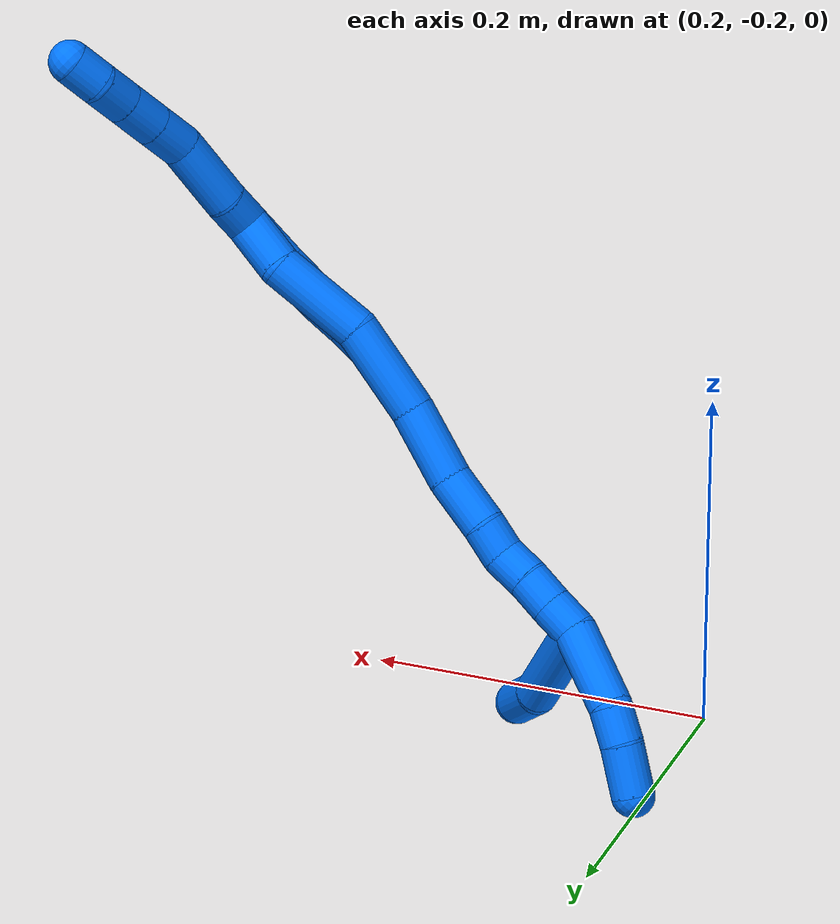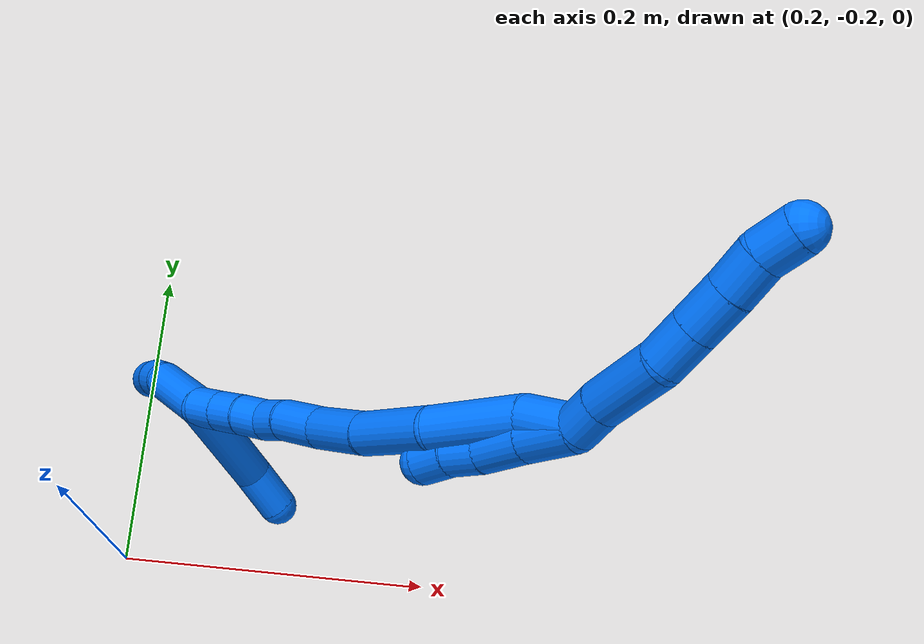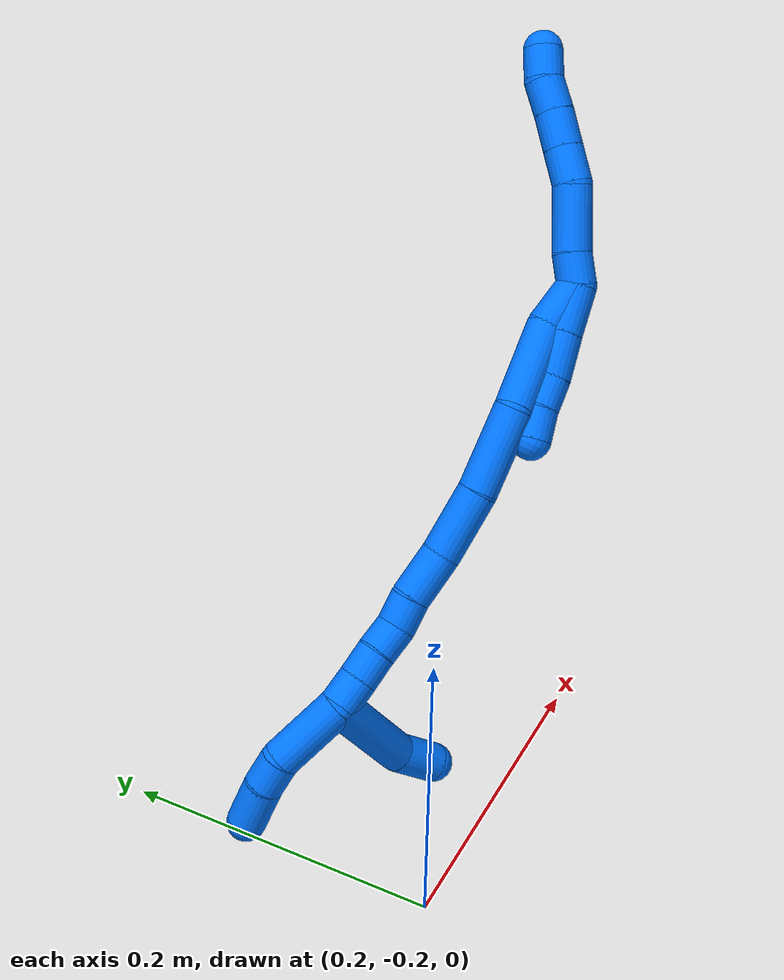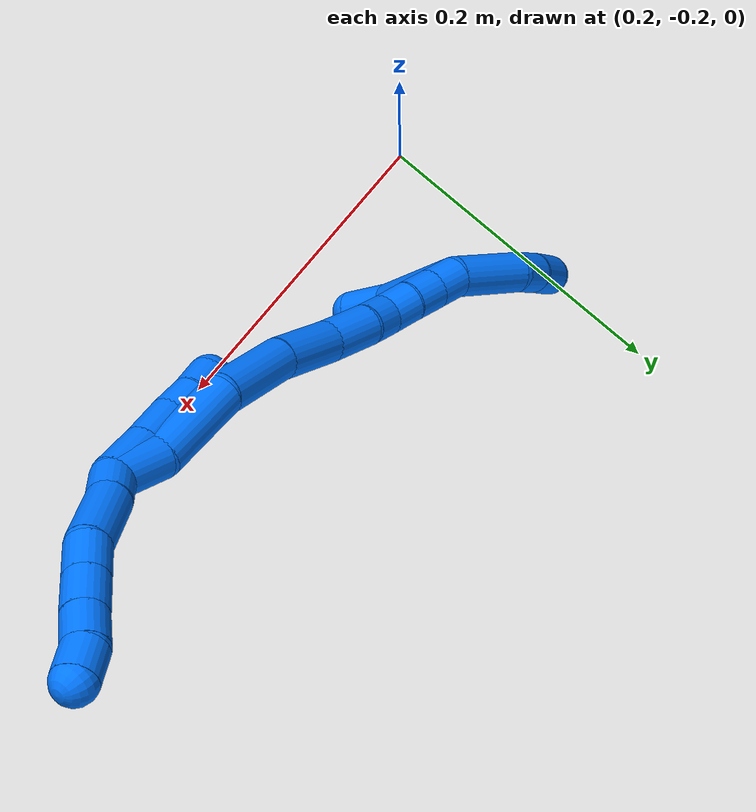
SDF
<sdf version="1.7">
 <world name="default">
  <model name="14">
   <static>0</static>
   <link name="14">
    <collision name="collision-cylinder-e_1_2_8">
     <pose>0.0015 0.005628 0.008534 -0.583025 0.145679 -0.043783</pose>
     <geometry><cylinder><radius>0.0125</radius><length>0.020665</length></cylinder></geometry>
     <surface>
      <friction><ode><mu>1.16</mu><mu2>1.16</mu2><slip1>0</slip1><slip2>0</slip2></ode></friction>
      <contact><ode><kp>1e+06</kp><kd>1</kd><max_vel>0</max_vel><min_depth>0.001</min_depth></ode></contact>
     </surface>
    </collision>
    <visual name="visual-cylinder-e_1_2_8">
     <pose>0.0015 0.005628 0.008534 -0.583025 0.145679 -0.043783</pose>
     <geometry><cylinder><radius>0.0125</radius><length>0.020665</length></cylinder></geometry>
     <material><ambient>0 0.462745 1 1</ambient></material>
    </visual>
    <collision name="collision-cylinder-e_2_8_9">
     <pose>0.004142 0.020443 0.035613 -0.459921 0.055157 -0.012916</pose>
     <geometry><cylinder><radius>0.0125</radius><length>0.041454</length></cylinder></geometry>
     <surface>
      <friction><ode><mu>1.16</mu><mu2>1.16</mu2><slip1>0</slip1><slip2>0</slip2></ode></friction>
      <contact><ode><kp>1e+06</kp><kd>1</kd><max_vel>0</max_vel><min_depth>0.001</min_depth></ode></contact>
     </surface>
    </collision>
    <visual name="visual-cylinder-e_2_8_9">
     <pose>0.004142 0.020443 0.035613 -0.459921 0.055157 -0.012916</pose>
     <geometry><cylinder><radius>0.0125</radius><length>0.041454</length></cylinder></geometry>
     <material><ambient>0 0.462745 1 1</ambient></material>
    </visual>
    <collision name="collision-cylinder-e_3_9_10">
     <pose>0.008818 0.035842 0.063255 -0.599218 0.310344 -0.09657</pose>
     <geometry><cylinder><radius>0.0125</radius><length>0.023137</length></cylinder></geometry>
     <surface>
      <friction><ode><mu>1.16</mu><mu2>1.16</mu2><slip1>0</slip1><slip2>0</slip2></ode></friction>
      <contact><ode><kp>1e+06</kp><kd>1</kd><max_vel>0</max_vel><min_depth>0.001</min_depth></ode></contact>
     </surface>
    </collision>
    <visual name="visual-cylinder-e_3_9_10">
     <pose>0.008818 0.035842 0.063255 -0.599218 0.310344 -0.09657</pose>
     <geometry><cylinder><radius>0.0125</radius><length>0.023137</length></cylinder></geometry>
     <material><ambient>0 0.462745 1 1</ambient></material>
    </visual>
    <collision name="collision-cylinder-e_4_10_11">
     <pose>0.015925 0.048354 0.081593 -0.598302 0.309322 -0.096091</pose>
     <geometry><cylinder><radius>0.0125</radius><length>0.023484</length></cylinder></geometry>
     <surface>
      <friction><ode><mu>1.16</mu><mu2>1.16</mu2><slip1>0</slip1><slip2>0</slip2></ode></friction>
      <contact><ode><kp>1e+06</kp><kd>1</kd><max_vel>0</max_vel><min_depth>0.001</min_depth></ode></contact>
     </surface>
    </collision>
    <visual name="visual-cylinder-e_4_10_11">
     <pose>0.015925 0.048354 0.081593 -0.598302 0.309322 -0.096091</pose>
     <geometry><cylinder><radius>0.0125</radius><length>0.023484</length></cylinder></geometry>
     <material><ambient>0 0.462745 1 1</ambient></material>
    </visual>
    <collision name="collision-cylinder-e_5_11_12">
     <pose>0.022822 0.060781 0.098824 -0.654248 0.318782 -0.108985</pose>
     <geometry><cylinder><radius>0.0125</radius><length>0.021204</length></cylinder></geometry>
     <surface>
      <friction><ode><mu>1.16</mu><mu2>1.16</mu2><slip1>0</slip1><slip2>0</slip2></ode></friction>
      <contact><ode><kp>1e+06</kp><kd>1</kd><max_vel>0</max_vel><min_depth>0.001</min_depth></ode></contact>
     </surface>
    </collision>
    <visual name="visual-cylinder-e_5_11_12">
     <pose>0.022822 0.060781 0.098824 -0.654248 0.318782 -0.108985</pose>
     <geometry><cylinder><radius>0.0125</radius><length>0.021204</length></cylinder></geometry>
     <material><ambient>0 0.462745 1 1</ambient></material>
    </visual>
    <collision name="collision-cylinder-e_6_12_6">
     <pose>0.028717 0.07045 0.115835 -0.374102 0.259366 -0.049356</pose>
     <geometry><cylinder><radius>0.0125</radius><length>0.020057</length></cylinder></geometry>
     <surface>
      <friction><ode><mu>1.16</mu><mu2>1.16</mu2><slip1>0</slip1><slip2>0</slip2></ode></friction>
      <contact><ode><kp>1e+06</kp><kd>1</kd><max_vel>0</max_vel><min_depth>0.001</min_depth></ode></contact>
     </surface>
    </collision>
    <visual name="visual-cylinder-e_6_12_6">
     <pose>0.028717 0.07045 0.115835 -0.374102 0.259366 -0.049356</pose>
     <geometry><cylinder><radius>0.0125</radius><length>0.020057</length></cylinder></geometry>
     <material><ambient>0 0.462745 1 1</ambient></material>
    </visual>
    <collision name="collision-cylinder-e_1_2_13">
     <pose>-0.000223 -0.002235 -0.01525 2.99605 -0.014495 -0.198178</pose>
     <geometry><cylinder><radius>0.0125</radius><length>0.030828</length></cylinder></geometry>
     <surface>
      <friction><ode><mu>1.16</mu><mu2>1.16</mu2><slip1>0</slip1><slip2>0</slip2></ode></friction>
      <contact><ode><kp>1e+06</kp><kd>1</kd><max_vel>0</max_vel><min_depth>0.001</min_depth></ode></contact>
     </surface>
    </collision>
    <visual name="visual-cylinder-e_1_2_13">
     <pose>-0.000223 -0.002235 -0.01525 2.99605 -0.014495 -0.198178</pose>
     <geometry><cylinder><radius>0.0125</radius><length>0.030828</length></cylinder></geometry>
     <material><ambient>0 0.462745 1 1</ambient></material>
    </visual>
    <collision name="collision-cylinder-e_2_13_14">
     <pose>-0.001143 -0.006805 -0.044526 2.97671 -0.048888 -0.575356</pose>
     <geometry><cylinder><radius>0.0125</radius><length>0.028474</length></cylinder></geometry>
     <surface>
      <friction><ode><mu>1.16</mu><mu2>1.16</mu2><slip1>0</slip1><slip2>0</slip2></ode></friction>
      <contact><ode><kp>1e+06</kp><kd>1</kd><max_vel>0</max_vel><min_depth>0.001</min_depth></ode></contact>
     </surface>
    </collision>
    <visual name="visual-cylinder-e_2_13_14">
     <pose>-0.001143 -0.006805 -0.044526 2.97671 -0.048888 -0.575356</pose>
     <geometry><cylinder><radius>0.0125</radius><length>0.028474</length></cylinder></geometry>
     <material><ambient>0 0.462745 1 1</ambient></material>
    </visual>
    <collision name="collision-cylinder-e_3_14_15">
     <pose>-0.002652 -0.009244 -0.068764 3.13132 -0.079478 -2.88476</pose>
     <geometry><cylinder><radius>0.0125</radius><length>0.020486</length></cylinder></geometry>
     <surface>
      <friction><ode><mu>1.16</mu><mu2>1.16</mu2><slip1>0</slip1><slip2>0</slip2></ode></friction>
      <contact><ode><kp>1e+06</kp><kd>1</kd><max_vel>0</max_vel><min_depth>0.001</min_depth></ode></contact>
     </surface>
    </collision>
    <visual name="visual-cylinder-e_3_14_15">
     <pose>-0.002652 -0.009244 -0.068764 3.13132 -0.079478 -2.88476</pose>
     <geometry><cylinder><radius>0.0125</radius><length>0.020486</length></cylinder></geometry>
     <material><ambient>0 0.462745 1 1</ambient></material>
    </visual>
    <collision name="collision-cylinder-e_4_15_5">
     <pose>-0.004181 -0.011249 -0.088873 2.95187 -0.070977 -0.714269</pose>
     <geometry><cylinder><radius>0.0125</radius><length>0.020212</length></cylinder></geometry>
     <surface>
      <friction><ode><mu>1.16</mu><mu2>1.16</mu2><slip1>0</slip1><slip2>0</slip2></ode></friction>
      <contact><ode><kp>1e+06</kp><kd>1</kd><max_vel>0</max_vel><min_depth>0.001</min_depth></ode></contact>
     </surface>
    </collision>
    <visual name="visual-cylinder-e_4_15_5">
     <pose>-0.004181 -0.011249 -0.088873 2.95187 -0.070977 -0.714269</pose>
     <geometry><cylinder><radius>0.0125</radius><length>0.020212</length></cylinder></geometry>
     <material><ambient>0 0.462745 1 1</ambient></material>
    </visual>
    <collision name="collision-cylinder-e_1_2_16">
     <pose>0.002493 0.002373 -0.015303 -2.98775 0.159587 -1.60757</pose>
     <geometry><cylinder><radius>0.0125</radius><length>0.031371</length></cylinder></geometry>
     <surface>
      <friction><ode><mu>1.16</mu><mu2>1.16</mu2><slip1>0</slip1><slip2>0</slip2></ode></friction>
      <contact><ode><kp>1e+06</kp><kd>1</kd><max_vel>0</max_vel><min_depth>0.001</min_depth></ode></contact>
     </surface>
    </collision>
    <visual name="visual-cylinder-e_1_2_16">
     <pose>0.002493 0.002373 -0.015303 -2.98775 0.159587 -1.60757</pose>
     <geometry><cylinder><radius>0.0125</radius><length>0.031371</length></cylinder></geometry>
     <material><ambient>0 0.462745 1 1</ambient></material>
    </visual>
    <collision name="collision-cylinder-e_2_16_17">
     <pose>0.001724 0.004977 -0.058541 -3.13335 -0.116232 3.00018</pose>
     <geometry><cylinder><radius>0.0125</radius><length>0.05625</length></cylinder></geometry>
     <surface>
      <friction><ode><mu>1.16</mu><mu2>1.16</mu2><slip1>0</slip1><slip2>0</slip2></ode></friction>
      <contact><ode><kp>1e+06</kp><kd>1</kd><max_vel>0</max_vel><min_depth>0.001</min_depth></ode></contact>
     </surface>
    </collision>
    <visual name="visual-cylinder-e_2_16_17">
     <pose>0.001724 0.004977 -0.058541 -3.13335 -0.116232 3.00018</pose>
     <geometry><cylinder><radius>0.0125</radius><length>0.05625</length></cylinder></geometry>
     <material><ambient>0 0.462745 1 1</ambient></material>
    </visual>
    <collision name="collision-cylinder-e_3_17_18">
     <pose>0.002353 0.002377 -0.113543 3.03742 0.142005 1.87646</pose>
     <geometry><cylinder><radius>0.0125</radius><length>0.054983</length></cylinder></geometry>
     <surface>
      <friction><ode><mu>1.16</mu><mu2>1.16</mu2><slip1>0</slip1><slip2>0</slip2></ode></friction>
      <contact><ode><kp>1e+06</kp><kd>1</kd><max_vel>0</max_vel><min_depth>0.001</min_depth></ode></contact>
     </surface>
    </collision>
    <visual name="visual-cylinder-e_3_17_18">
     <pose>0.002353 0.002377 -0.113543 3.03742 0.142005 1.87646</pose>
     <geometry><cylinder><radius>0.0125</radius><length>0.054983</length></cylinder></geometry>
     <material><ambient>0 0.462745 1 1</ambient></material>
    </visual>
    <collision name="collision-cylinder-e_4_18_19">
     <pose>0.012183 -0.001428 -0.162184 3.09643 0.268393 2.81008</pose>
     <geometry><cylinder><radius>0.0125</radius><length>0.044796</length></cylinder></geometry>
     <surface>
      <friction><ode><mu>1.16</mu><mu2>1.16</mu2><slip1>0</slip1><slip2>0</slip2></ode></friction>
      <contact><ode><kp>1e+06</kp><kd>1</kd><max_vel>0</max_vel><min_depth>0.001</min_depth></ode></contact>
     </surface>
    </collision>
    <visual name="visual-cylinder-e_4_18_19">
     <pose>0.012183 -0.001428 -0.162184 3.09643 0.268393 2.81008</pose>
     <geometry><cylinder><radius>0.0125</radius><length>0.044796</length></cylinder></geometry>
     <material><ambient>0 0.462745 1 1</ambient></material>
    </visual>
    <collision name="collision-cylinder-e_5_19_20">
     <pose>0.020925 -0.000638 -0.199632 -3.03083 0.173677 -2.00754</pose>
     <geometry><cylinder><radius>0.0125</radius><length>0.03243</length></cylinder></geometry>
     <surface>
      <friction><ode><mu>1.16</mu><mu2>1.16</mu2><slip1>0</slip1><slip2>0</slip2></ode></friction>
      <contact><ode><kp>1e+06</kp><kd>1</kd><max_vel>0</max_vel><min_depth>0.001</min_depth></ode></contact>
     </surface>
    </collision>
    <visual name="visual-cylinder-e_5_19_20">
     <pose>0.020925 -0.000638 -0.199632 -3.03083 0.173677 -2.00754</pose>
     <geometry><cylinder><radius>0.0125</radius><length>0.03243</length></cylinder></geometry>
     <material><ambient>0 0.462745 1 1</ambient></material>
    </visual>
    <collision name="collision-cylinder-e_6_20_21">
     <pose>0.025593 0.00043 -0.225375 3.07106 0.186382 2.41966</pose>
     <geometry><cylinder><radius>0.0125</radius><length>0.020138</length></cylinder></geometry>
     <surface>
      <friction><ode><mu>1.16</mu><mu2>1.16</mu2><slip1>0</slip1><slip2>0</slip2></ode></friction>
      <contact><ode><kp>1e+06</kp><kd>1</kd><max_vel>0</max_vel><min_depth>0.001</min_depth></ode></contact>
     </surface>
    </collision>
    <visual name="visual-cylinder-e_6_20_21">
     <pose>0.025593 0.00043 -0.225375 3.07106 0.186382 2.41966</pose>
     <geometry><cylinder><radius>0.0125</radius><length>0.020138</length></cylinder></geometry>
     <material><ambient>0 0.462745 1 1</ambient></material>
    </visual>
    <collision name="collision-cylinder-e_7_21_22">
     <pose>0.027765 0.002084 -0.244971 -2.90438 0.030595 -0.255363</pose>
     <geometry><cylinder><radius>0.0125</radius><length>0.020021</length></cylinder></geometry>
     <surface>
      <friction><ode><mu>1.16</mu><mu2>1.16</mu2><slip1>0</slip1><slip2>0</slip2></ode></friction>
      <contact><ode><kp>1e+06</kp><kd>1</kd><max_vel>0</max_vel><min_depth>0.001</min_depth></ode></contact>
     </surface>
    </collision>
    <visual name="visual-cylinder-e_7_21_22">
     <pose>0.027765 0.002084 -0.244971 -2.90438 0.030595 -0.255363</pose>
     <geometry><cylinder><radius>0.0125</radius><length>0.020021</length></cylinder></geometry>
     <material><ambient>0 0.462745 1 1</ambient></material>
    </visual>
    <collision name="collision-cylinder-e_8_22_23">
     <pose>0.029034 0.005813 -0.264554 -3.00271 0.096504 -1.21375</pose>
     <geometry><cylinder><radius>0.0125</radius><length>0.020001</length></cylinder></geometry>
     <surface>
      <friction><ode><mu>1.16</mu><mu2>1.16</mu2><slip1>0</slip1><slip2>0</slip2></ode></friction>
      <contact><ode><kp>1e+06</kp><kd>1</kd><max_vel>0</max_vel><min_depth>0.001</min_depth></ode></contact>
     </surface>
    </collision>
    <visual name="visual-cylinder-e_8_22_23">
     <pose>0.029034 0.005813 -0.264554 -3.00271 0.096504 -1.21375</pose>
     <geometry><cylinder><radius>0.0125</radius><length>0.020001</length></cylinder></geometry>
     <material><ambient>0 0.462745 1 1</ambient></material>
    </visual>
    <collision name="collision-cylinder-e_9_23_1">
     <pose>0.03071 0.009013 -0.284224 -2.95803 0.071217 -0.738581</pose>
     <geometry><cylinder><radius>0.0125</radius><length>0.02001</length></cylinder></geometry>
     <surface>
      <friction><ode><mu>1.16</mu><mu2>1.16</mu2><slip1>0</slip1><slip2>0</slip2></ode></friction>
      <contact><ode><kp>1e+06</kp><kd>1</kd><max_vel>0</max_vel><min_depth>0.001</min_depth></ode></contact>
     </surface>
    </collision>
    <visual name="visual-cylinder-e_9_23_1">
     <pose>0.03071 0.009013 -0.284224 -2.95803 0.071217 -0.738581</pose>
     <geometry><cylinder><radius>0.0125</radius><length>0.02001</length></cylinder></geometry>
     <material><ambient>0 0.462745 1 1</ambient></material>
    </visual>
    <collision name="collision-cylinder-e_1_1_24">
     <pose>0.04259 -0.02198 -0.298918 1.71849 0.324729 0.375485</pose>
     <geometry><cylinder><radius>0.0125</radius><length>0.07001</length></cylinder></geometry>
     <surface>
      <friction><ode><mu>1.16</mu><mu2>1.16</mu2><slip1>0</slip1><slip2>0</slip2></ode></friction>
      <contact><ode><kp>1e+06</kp><kd>1</kd><max_vel>0</max_vel><min_depth>0.001</min_depth></ode></contact>
     </surface>
    </collision>
    <visual name="visual-cylinder-e_1_1_24">
     <pose>0.04259 -0.02198 -0.298918 1.71849 0.324729 0.375485</pose>
     <geometry><cylinder><radius>0.0125</radius><length>0.07001</length></cylinder></geometry>
     <material><ambient>0 0.462745 1 1</ambient></material>
    </visual>
    <collision name="collision-cylinder-e_2_24_4">
     <pose>0.055582 -0.069546 -0.30182 1.4374 0.121909 0.106674</pose>
     <geometry><cylinder><radius>0.0125</radius><length>0.02999</length></cylinder></geometry>
     <surface>
      <friction><ode><mu>1.16</mu><mu2>1.16</mu2><slip1>0</slip1><slip2>0</slip2></ode></friction>
      <contact><ode><kp>1e+06</kp><kd>1</kd><max_vel>0</max_vel><min_depth>0.001</min_depth></ode></contact>
     </surface>
    </collision>
    <visual name="visual-cylinder-e_2_24_4">
     <pose>0.055582 -0.069546 -0.30182 1.4374 0.121909 0.106674</pose>
     <geometry><cylinder><radius>0.0125</radius><length>0.02999</length></cylinder></geometry>
     <material><ambient>0 0.462745 1 1</ambient></material>
    </visual>
    <collision name="collision-cylinder-e_1_1_25">
     <pose>0.040911 0.016152 -0.316013 -2.90419 0.397334 -2.07198</pose>
     <geometry><cylinder><radius>0.0125</radius><length>0.049043</length></cylinder></geometry>
     <surface>
      <friction><ode><mu>1.16</mu><mu2>1.16</mu2><slip1>0</slip1><slip2>0</slip2></ode></friction>
      <contact><ode><kp>1e+06</kp><kd>1</kd><max_vel>0</max_vel><min_depth>0.001</min_depth></ode></contact>
     </surface>
    </collision>
    <visual name="visual-cylinder-e_1_1_25">
     <pose>0.040911 0.016152 -0.316013 -2.90419 0.397334 -2.07198</pose>
     <geometry><cylinder><radius>0.0125</radius><length>0.049043</length></cylinder></geometry>
     <material><ambient>0 0.462745 1 1</ambient></material>
    </visual>
    <collision name="collision-cylinder-e_2_25_26">
     <pose>0.055188 0.020303 -0.347491 3.01936 0.46387 2.63458</pose>
     <geometry><cylinder><radius>0.0125</radius><length>0.021408</length></cylinder></geometry>
     <surface>
      <friction><ode><mu>1.16</mu><mu2>1.16</mu2><slip1>0</slip1><slip2>0</slip2></ode></friction>
      <contact><ode><kp>1e+06</kp><kd>1</kd><max_vel>0</max_vel><min_depth>0.001</min_depth></ode></contact>
     </surface>
    </collision>
    <visual name="visual-cylinder-e_2_25_26">
     <pose>0.055188 0.020303 -0.347491 3.01936 0.46387 2.63458</pose>
     <geometry><cylinder><radius>0.0125</radius><length>0.021408</length></cylinder></geometry>
     <material><ambient>0 0.462745 1 1</ambient></material>
    </visual>
    <collision name="collision-cylinder-e_3_26_3">
     <pose>0.066948 0.015474 -0.369494 2.8567 0.491345 2.10247</pose>
     <geometry><cylinder><radius>0.0125</radius><length>0.029549</length></cylinder></geometry>
     <surface>
      <friction><ode><mu>1.16</mu><mu2>1.16</mu2><slip1>0</slip1><slip2>0</slip2></ode></friction>
      <contact><ode><kp>1e+06</kp><kd>1</kd><max_vel>0</max_vel><min_depth>0.001</min_depth></ode></contact>
     </surface>
    </collision>
    <visual name="visual-cylinder-e_3_26_3">
     <pose>0.066948 0.015474 -0.369494 2.8567 0.491345 2.10247</pose>
     <geometry><cylinder><radius>0.0125</radius><length>0.029549</length></cylinder></geometry>
     <material><ambient>0 0.462745 1 1</ambient></material>
    </visual>
    <collision name="collision-sphere-3">
     <pose>0.073919 0.011813 -0.381996 0 -0 0</pose>
     <geometry><sphere><radius>0.0125</radius></sphere></geometry>
     <surface>
      <friction><ode><mu>1.16</mu><mu2>1.16</mu2><slip1>0</slip1><slip2>0</slip2></ode></friction>
      <contact><ode><kp>1e+06</kp><kd>1</kd><max_vel>0</max_vel><min_depth>0.001</min_depth></ode></contact>
     </surface>
    </collision>
    <visual name="visual-sphere-3">
     <pose>0.073919 0.011813 -0.381996 0 -0 0</pose>
     <geometry><sphere><radius>0.0125</radius></sphere></geometry>
     <material><ambient>0 0.462745 1 1</ambient></material>
    </visual>
    <collision name="collision-sphere-26">
     <pose>0.059978 0.019135 -0.356992 0 -0 0</pose>
     <geometry><sphere><radius>0.0125</radius></sphere></geometry>
     <surface>
      <friction><ode><mu>1.16</mu><mu2>1.16</mu2><slip1>0</slip1><slip2>0</slip2></ode></friction>
      <contact><ode><kp>1e+06</kp><kd>1</kd><max_vel>0</max_vel><min_depth>0.001</min_depth></ode></contact>
     </surface>
    </collision>
    <visual name="visual-sphere-26">
     <pose>0.059978 0.019135 -0.356992 0 -0 0</pose>
     <geometry><sphere><radius>0.0125</radius></sphere></geometry>
     <material><ambient>0 0.462745 1 1</ambient></material>
    </visual>
    <collision name="collision-sphere-25">
     <pose>0.050399 0.02147 -0.337989 0 -0 0</pose>
     <geometry><sphere><radius>0.0125</radius></sphere></geometry>
     <surface>
      <friction><ode><mu>1.16</mu><mu2>1.16</mu2><slip1>0</slip1><slip2>0</slip2></ode></friction>
      <contact><ode><kp>1e+06</kp><kd>1</kd><max_vel>0</max_vel><min_depth>0.001</min_depth></ode></contact>
     </surface>
    </collision>
    <visual name="visual-sphere-25">
     <pose>0.050399 0.02147 -0.337989 0 -0 0</pose>
     <geometry><sphere><radius>0.0125</radius></sphere></geometry>
     <material><ambient>0 0.462745 1 1</ambient></material>
    </visual>
    <collision name="collision-sphere-4">
     <pose>0.057406 -0.084297 -0.29984 0 -0 0</pose>
     <geometry><sphere><radius>0.0125</radius></sphere></geometry>
     <surface>
      <friction><ode><mu>1.16</mu><mu2>1.16</mu2><slip1>0</slip1><slip2>0</slip2></ode></friction>
      <contact><ode><kp>1e+06</kp><kd>1</kd><max_vel>0</max_vel><min_depth>0.001</min_depth></ode></contact>
     </surface>
    </collision>
    <visual name="visual-sphere-4">
     <pose>0.057406 -0.084297 -0.29984 0 -0 0</pose>
     <geometry><sphere><radius>0.0125</radius></sphere></geometry>
     <material><ambient>0 0.462745 1 1</ambient></material>
    </visual>
    <collision name="collision-sphere-24">
     <pose>0.053759 -0.054794 -0.303799 0 -0 0</pose>
     <geometry><sphere><radius>0.0125</radius></sphere></geometry>
     <surface>
      <friction><ode><mu>1.16</mu><mu2>1.16</mu2><slip1>0</slip1><slip2>0</slip2></ode></friction>
      <contact><ode><kp>1e+06</kp><kd>1</kd><max_vel>0</max_vel><min_depth>0.001</min_depth></ode></contact>
     </surface>
    </collision>
    <visual name="visual-sphere-24">
     <pose>0.053759 -0.054794 -0.303799 0 -0 0</pose>
     <geometry><sphere><radius>0.0125</radius></sphere></geometry>
     <material><ambient>0 0.462745 1 1</ambient></material>
    </visual>
    <collision name="collision-sphere-1">
     <pose>0.031422 0.010834 -0.294036 0 -0 0</pose>
     <geometry><sphere><radius>0.0125</radius></sphere></geometry>
     <surface>
      <friction><ode><mu>1.16</mu><mu2>1.16</mu2><slip1>0</slip1><slip2>0</slip2></ode></friction>
      <contact><ode><kp>1e+06</kp><kd>1</kd><max_vel>0</max_vel><min_depth>0.001</min_depth></ode></contact>
     </surface>
    </collision>
    <visual name="visual-sphere-1">
     <pose>0.031422 0.010834 -0.294036 0 -0 0</pose>
     <geometry><sphere><radius>0.0125</radius></sphere></geometry>
     <material><ambient>0 0.462745 1 1</ambient></material>
    </visual>
    <collision name="collision-sphere-23">
     <pose>0.029998 0.007191 -0.274412 0 -0 0</pose>
     <geometry><sphere><radius>0.0125</radius></sphere></geometry>
     <surface>
      <friction><ode><mu>1.16</mu><mu2>1.16</mu2><slip1>0</slip1><slip2>0</slip2></ode></friction>
      <contact><ode><kp>1e+06</kp><kd>1</kd><max_vel>0</max_vel><min_depth>0.001</min_depth></ode></contact>
     </surface>
    </collision>
    <visual name="visual-sphere-23">
     <pose>0.029998 0.007191 -0.274412 0 -0 0</pose>
     <geometry><sphere><radius>0.0125</radius></sphere></geometry>
     <material><ambient>0 0.462745 1 1</ambient></material>
    </visual>
    <collision name="collision-sphere-22">
     <pose>0.028071 0.004435 -0.254696 0 -0 0</pose>
     <geometry><sphere><radius>0.0125</radius></sphere></geometry>
     <surface>
      <friction><ode><mu>1.16</mu><mu2>1.16</mu2><slip1>0</slip1><slip2>0</slip2></ode></friction>
      <contact><ode><kp>1e+06</kp><kd>1</kd><max_vel>0</max_vel><min_depth>0.001</min_depth></ode></contact>
     </surface>
    </collision>
    <visual name="visual-sphere-22">
     <pose>0.028071 0.004435 -0.254696 0 -0 0</pose>
     <geometry><sphere><radius>0.0125</radius></sphere></geometry>
     <material><ambient>0 0.462745 1 1</ambient></material>
    </visual>
    <collision name="collision-sphere-21">
     <pose>0.027458 -0.000267 -0.235245 0 -0 0</pose>
     <geometry><sphere><radius>0.0125</radius></sphere></geometry>
     <surface>
      <friction><ode><mu>1.16</mu><mu2>1.16</mu2><slip1>0</slip1><slip2>0</slip2></ode></friction>
      <contact><ode><kp>1e+06</kp><kd>1</kd><max_vel>0</max_vel><min_depth>0.001</min_depth></ode></contact>
     </surface>
    </collision>
    <visual name="visual-sphere-21">
     <pose>0.027458 -0.000267 -0.235245 0 -0 0</pose>
     <geometry><sphere><radius>0.0125</radius></sphere></geometry>
     <material><ambient>0 0.462745 1 1</ambient></material>
    </visual>
    <collision name="collision-sphere-12">
     <pose>0.026145 0.066908 0.106813 0 -0 0</pose>
     <geometry><sphere><radius>0.0125</radius></sphere></geometry>
     <surface>
      <friction><ode><mu>1.16</mu><mu2>1.16</mu2><slip1>0</slip1><slip2>0</slip2></ode></friction>
      <contact><ode><kp>1e+06</kp><kd>1</kd><max_vel>0</max_vel><min_depth>0.001</min_depth></ode></contact>
     </surface>
    </collision>
    <visual name="visual-sphere-12">
     <pose>0.026145 0.066908 0.106813 0 -0 0</pose>
     <geometry><sphere><radius>0.0125</radius></sphere></geometry>
     <material><ambient>0 0.462745 1 1</ambient></material>
    </visual>
    <collision name="collision-sphere-11">
     <pose>0.0195 0.054654 0.090835 0 -0 0</pose>
     <geometry><sphere><radius>0.0125</radius></sphere></geometry>
     <surface>
      <friction><ode><mu>1.16</mu><mu2>1.16</mu2><slip1>0</slip1><slip2>0</slip2></ode></friction>
      <contact><ode><kp>1e+06</kp><kd>1</kd><max_vel>0</max_vel><min_depth>0.001</min_depth></ode></contact>
     </surface>
    </collision>
    <visual name="visual-sphere-11">
     <pose>0.0195 0.054654 0.090835 0 -0 0</pose>
     <geometry><sphere><radius>0.0125</radius></sphere></geometry>
     <material><ambient>0 0.462745 1 1</ambient></material>
    </visual>
    <collision name="collision-sphere-10">
     <pose>0.012351 0.042055 0.072351 0 -0 0</pose>
     <geometry><sphere><radius>0.0125</radius></sphere></geometry>
     <surface>
      <friction><ode><mu>1.16</mu><mu2>1.16</mu2><slip1>0</slip1><slip2>0</slip2></ode></friction>
      <contact><ode><kp>1e+06</kp><kd>1</kd><max_vel>0</max_vel><min_depth>0.001</min_depth></ode></contact>
     </surface>
    </collision>
    <visual name="visual-sphere-10">
     <pose>0.012351 0.042055 0.072351 0 -0 0</pose>
     <geometry><sphere><radius>0.0125</radius></sphere></geometry>
     <material><ambient>0 0.462745 1 1</ambient></material>
    </visual>
    <collision name="collision-sphere-9">
     <pose>0.005285 0.029629 0.054158 0 -0 0</pose>
     <geometry><sphere><radius>0.0125</radius></sphere></geometry>
     <surface>
      <friction><ode><mu>1.16</mu><mu2>1.16</mu2><slip1>0</slip1><slip2>0</slip2></ode></friction>
      <contact><ode><kp>1e+06</kp><kd>1</kd><max_vel>0</max_vel><min_depth>0.001</min_depth></ode></contact>
     </surface>
    </collision>
    <visual name="visual-sphere-9">
     <pose>0.005285 0.029629 0.054158 0 -0 0</pose>
     <geometry><sphere><radius>0.0125</radius></sphere></geometry>
     <material><ambient>0 0.462745 1 1</ambient></material>
    </visual>
    <collision name="collision-sphere-2">
     <geometry><sphere><radius>0.0125</radius></sphere></geometry>
     <surface>
      <friction><ode><mu>1.16</mu><mu2>1.16</mu2><slip1>0</slip1><slip2>0</slip2></ode></friction>
      <contact><ode><kp>1e+06</kp><kd>1</kd><max_vel>0</max_vel><min_depth>0.001</min_depth></ode></contact>
     </surface>
    </collision>
    <visual name="visual-sphere-2">
     <geometry><sphere><radius>0.0125</radius></sphere></geometry>
     <material><ambient>0 0.462745 1 1</ambient></material>
    </visual>
    <collision name="collision-sphere-19">
     <pose>0.018123 -0.002403 -0.183758 0 -0 0</pose>
     <geometry><sphere><radius>0.0125</radius></sphere></geometry>
     <surface>
      <friction><ode><mu>1.16</mu><mu2>1.16</mu2><slip1>0</slip1><slip2>0</slip2></ode></friction>
      <contact><ode><kp>1e+06</kp><kd>1</kd><max_vel>0</max_vel><min_depth>0.001</min_depth></ode></contact>
     </surface>
    </collision>
    <visual name="visual-sphere-19">
     <pose>0.018123 -0.002403 -0.183758 0 -0 0</pose>
     <geometry><sphere><radius>0.0125</radius></sphere></geometry>
     <material><ambient>0 0.462745 1 1</ambient></material>
    </visual>
    <collision name="collision-sphere-8">
     <pose>0.003 0.011256 0.017068 0 -0 0</pose>
     <geometry><sphere><radius>0.0125</radius></sphere></geometry>
     <surface>
      <friction><ode><mu>1.16</mu><mu2>1.16</mu2><slip1>0</slip1><slip2>0</slip2></ode></friction>
      <contact><ode><kp>1e+06</kp><kd>1</kd><max_vel>0</max_vel><min_depth>0.001</min_depth></ode></contact>
     </surface>
    </collision>
    <visual name="visual-sphere-8">
     <pose>0.003 0.011256 0.017068 0 -0 0</pose>
     <geometry><sphere><radius>0.0125</radius></sphere></geometry>
     <material><ambient>0 0.462745 1 1</ambient></material>
    </visual>
    <collision name="collision-sphere-6">
     <pose>0.031289 0.073992 0.124858 0 -0 0</pose>
     <geometry><sphere><radius>0.0125</radius></sphere></geometry>
     <surface>
      <friction><ode><mu>1.16</mu><mu2>1.16</mu2><slip1>0</slip1><slip2>0</slip2></ode></friction>
      <contact><ode><kp>1e+06</kp><kd>1</kd><max_vel>0</max_vel><min_depth>0.001</min_depth></ode></contact>
     </surface>
    </collision>
    <visual name="visual-sphere-6">
     <pose>0.031289 0.073992 0.124858 0 -0 0</pose>
     <geometry><sphere><radius>0.0125</radius></sphere></geometry>
     <material><ambient>0 0.462745 1 1</ambient></material>
    </visual>
    <collision name="collision-sphere-13">
     <pose>-0.000447 -0.004471 -0.030499 0 -0 0</pose>
     <geometry><sphere><radius>0.0125</radius></sphere></geometry>
     <surface>
      <friction><ode><mu>1.16</mu><mu2>1.16</mu2><slip1>0</slip1><slip2>0</slip2></ode></friction>
      <contact><ode><kp>1e+06</kp><kd>1</kd><max_vel>0</max_vel><min_depth>0.001</min_depth></ode></contact>
     </surface>
    </collision>
    <visual name="visual-sphere-13">
     <pose>-0.000447 -0.004471 -0.030499 0 -0 0</pose>
     <geometry><sphere><radius>0.0125</radius></sphere></geometry>
     <material><ambient>0 0.462745 1 1</ambient></material>
    </visual>
    <collision name="collision-sphere-14">
     <pose>-0.001838 -0.009139 -0.058553 0 -0 0</pose>
     <geometry><sphere><radius>0.0125</radius></sphere></geometry>
     <surface>
      <friction><ode><mu>1.16</mu><mu2>1.16</mu2><slip1>0</slip1><slip2>0</slip2></ode></friction>
      <contact><ode><kp>1e+06</kp><kd>1</kd><max_vel>0</max_vel><min_depth>0.001</min_depth></ode></contact>
     </surface>
    </collision>
    <visual name="visual-sphere-14">
     <pose>-0.001838 -0.009139 -0.058553 0 -0 0</pose>
     <geometry><sphere><radius>0.0125</radius></sphere></geometry>
     <material><ambient>0 0.462745 1 1</ambient></material>
    </visual>
    <collision name="collision-sphere-15">
     <pose>-0.003465 -0.009348 -0.078974 0 -0 0</pose>
     <geometry><sphere><radius>0.0125</radius></sphere></geometry>
     <surface>
      <friction><ode><mu>1.16</mu><mu2>1.16</mu2><slip1>0</slip1><slip2>0</slip2></ode></friction>
      <contact><ode><kp>1e+06</kp><kd>1</kd><max_vel>0</max_vel><min_depth>0.001</min_depth></ode></contact>
     </surface>
    </collision>
    <visual name="visual-sphere-15">
     <pose>-0.003465 -0.009348 -0.078974 0 -0 0</pose>
     <geometry><sphere><radius>0.0125</radius></sphere></geometry>
     <material><ambient>0 0.462745 1 1</ambient></material>
    </visual>
    <collision name="collision-sphere-5">
     <pose>-0.004898 -0.013151 -0.098773 0 -0 0</pose>
     <geometry><sphere><radius>0.0125</radius></sphere></geometry>
     <surface>
      <friction><ode><mu>1.16</mu><mu2>1.16</mu2><slip1>0</slip1><slip2>0</slip2></ode></friction>
      <contact><ode><kp>1e+06</kp><kd>1</kd><max_vel>0</max_vel><min_depth>0.001</min_depth></ode></contact>
     </surface>
    </collision>
    <visual name="visual-sphere-5">
     <pose>-0.004898 -0.013151 -0.098773 0 -0 0</pose>
     <geometry><sphere><radius>0.0125</radius></sphere></geometry>
     <material><ambient>0 0.462745 1 1</ambient></material>
    </visual>
    <collision name="collision-sphere-16">
     <pose>0.004985 0.004746 -0.030607 0 -0 0</pose>
     <geometry><sphere><radius>0.0125</radius></sphere></geometry>
     <surface>
      <friction><ode><mu>1.16</mu><mu2>1.16</mu2><slip1>0</slip1><slip2>0</slip2></ode></friction>
      <contact><ode><kp>1e+06</kp><kd>1</kd><max_vel>0</max_vel><min_depth>0.001</min_depth></ode></contact>
     </surface>
    </collision>
    <visual name="visual-sphere-16">
     <pose>0.004985 0.004746 -0.030607 0 -0 0</pose>
     <geometry><sphere><radius>0.0125</radius></sphere></geometry>
     <material><ambient>0 0.462745 1 1</ambient></material>
    </visual>
    <collision name="collision-sphere-17">
     <pose>-0.001538 0.005207 -0.086476 0 -0 0</pose>
     <geometry><sphere><radius>0.0125</radius></sphere></geometry>
     <surface>
      <friction><ode><mu>1.16</mu><mu2>1.16</mu2><slip1>0</slip1><slip2>0</slip2></ode></friction>
      <contact><ode><kp>1e+06</kp><kd>1</kd><max_vel>0</max_vel><min_depth>0.001</min_depth></ode></contact>
     </surface>
    </collision>
    <visual name="visual-sphere-17">
     <pose>-0.001538 0.005207 -0.086476 0 -0 0</pose>
     <geometry><sphere><radius>0.0125</radius></sphere></geometry>
     <material><ambient>0 0.462745 1 1</ambient></material>
    </visual>
    <collision name="collision-sphere-18">
     <pose>0.006244 -0.000453 -0.14061 0 -0 0</pose>
     <geometry><sphere><radius>0.0125</radius></sphere></geometry>
     <surface>
      <friction><ode><mu>1.16</mu><mu2>1.16</mu2><slip1>0</slip1><slip2>0</slip2></ode></friction>
      <contact><ode><kp>1e+06</kp><kd>1</kd><max_vel>0</max_vel><min_depth>0.001</min_depth></ode></contact>
     </surface>
    </collision>
    <visual name="visual-sphere-18">
     <pose>0.006244 -0.000453 -0.14061 0 -0 0</pose>
     <geometry><sphere><radius>0.0125</radius></sphere></geometry>
     <material><ambient>0 0.462745 1 1</ambient></material>
    </visual>
    <collision name="collision-sphere-20">
     <pose>0.023727 0.001127 -0.215505 0 -0 0</pose>
     <geometry><sphere><radius>0.0125</radius></sphere></geometry>
     <surface>
      <friction><ode><mu>1.16</mu><mu2>1.16</mu2><slip1>0</slip1><slip2>0</slip2></ode></friction>
      <contact><ode><kp>1e+06</kp><kd>1</kd><max_vel>0</max_vel><min_depth>0.001</min_depth></ode></contact>
     </surface>
    </collision>
    <visual name="visual-sphere-20">
     <pose>0.023727 0.001127 -0.215505 0 -0 0</pose>
     <geometry><sphere><radius>0.0125</radius></sphere></geometry>
     <material><ambient>0 0.462745 1 1</ambient></material>
    </visual>
    <inertial>
     <pose>0.020363 0.00501 -0.138004 0 -0 0</pose>
     <mass>0.75</mass>
     <inertia><ixx>3.6e-05</ixx><ixy>0</ixy><ixz>0</ixz><iyy>5.9e-05</iyy><iyz>0</iyz><izz>-2.7e-05</izz></inertia>
    </inertial>
   </link>
   <pose>0.467556 -0.165424 0.280608 0.774269 0.494134 1.03235</pose>
  </model>
 </world>
</sdf>
